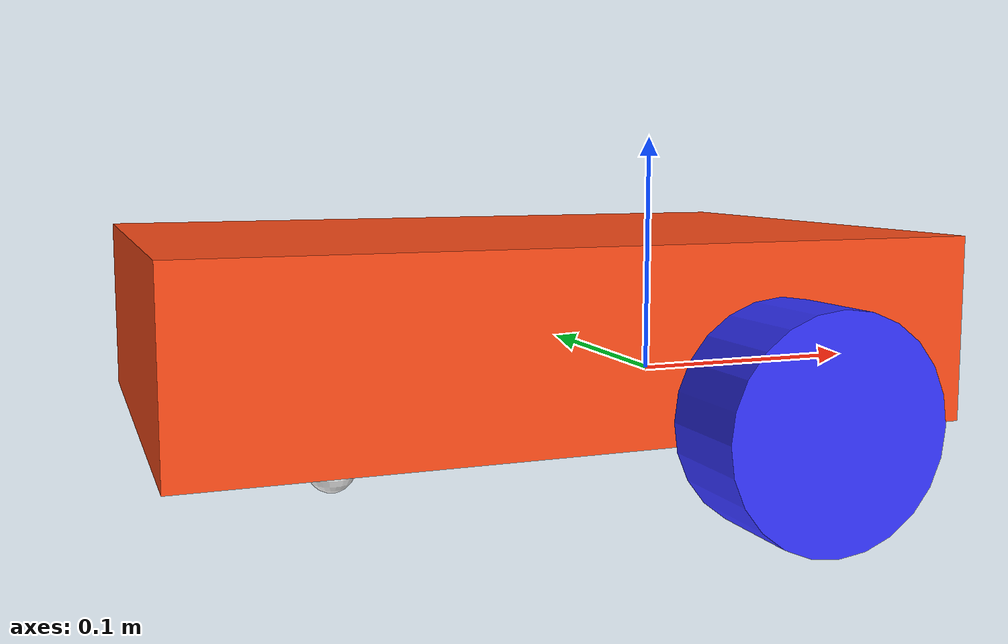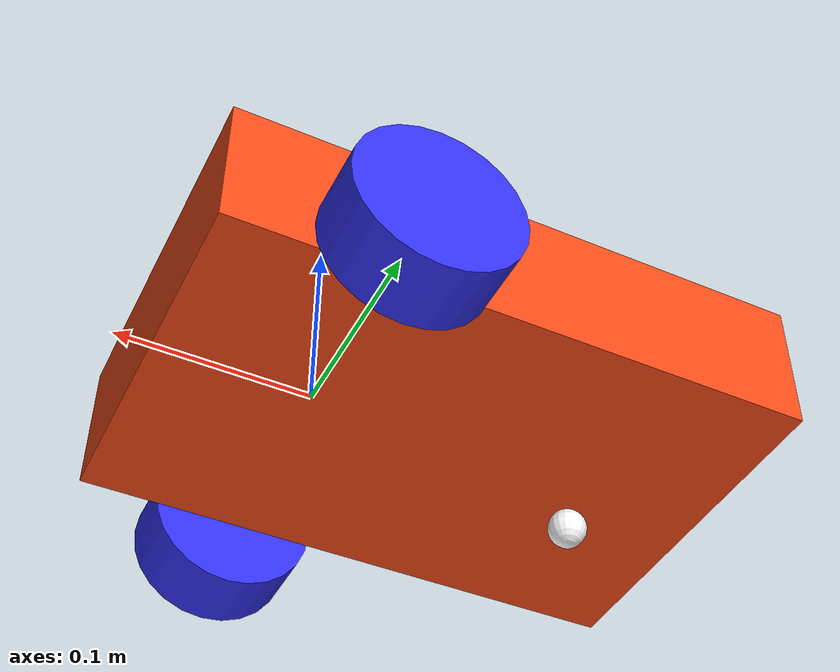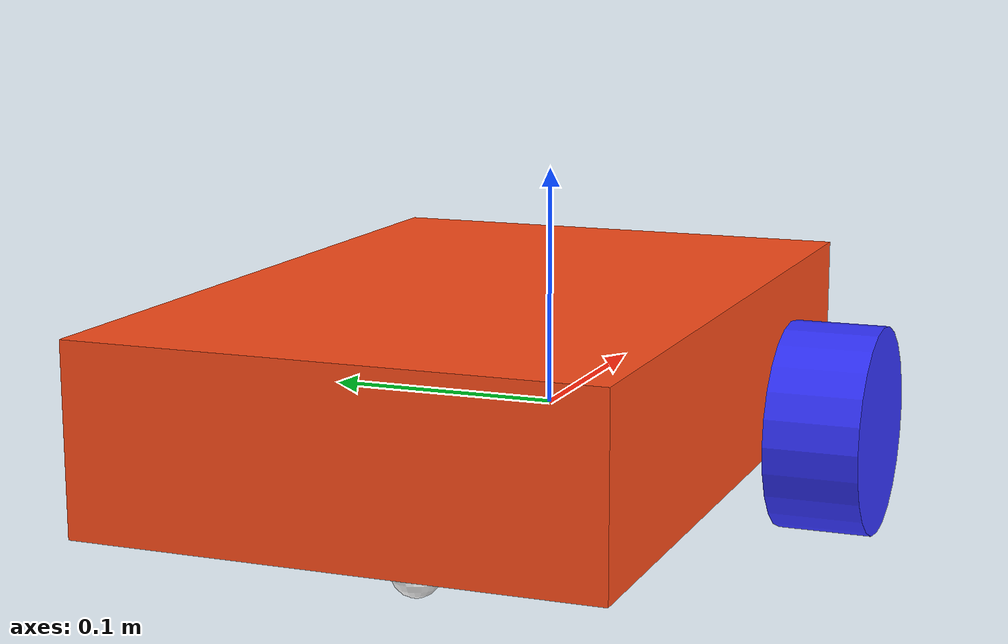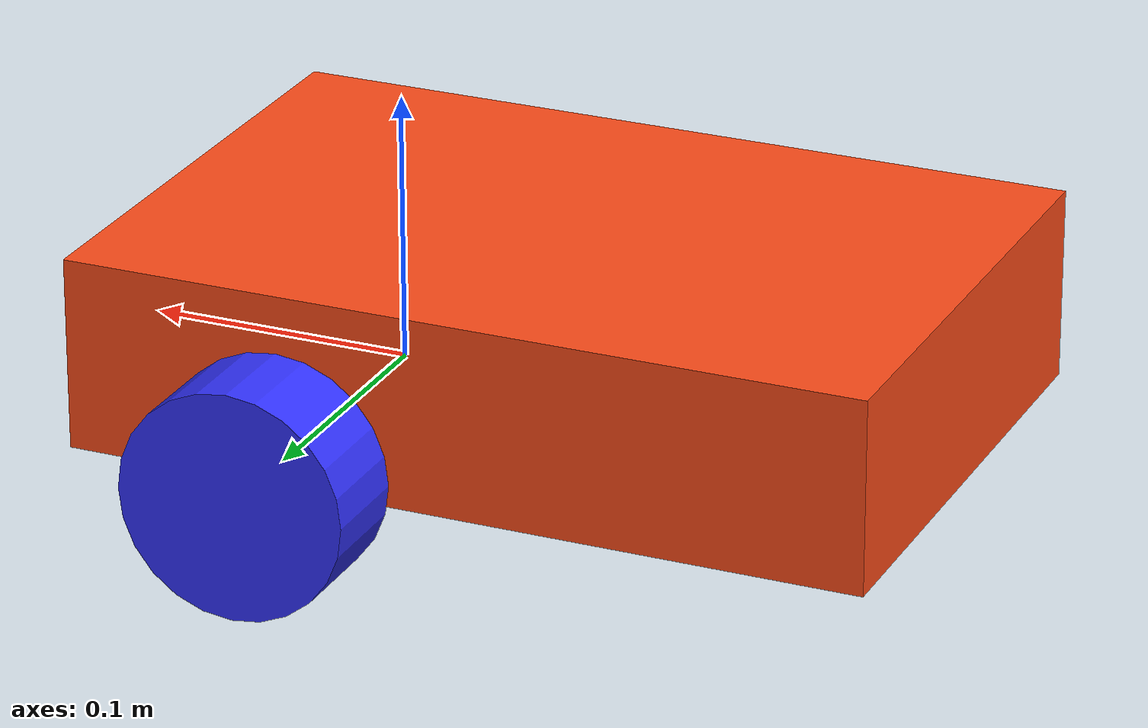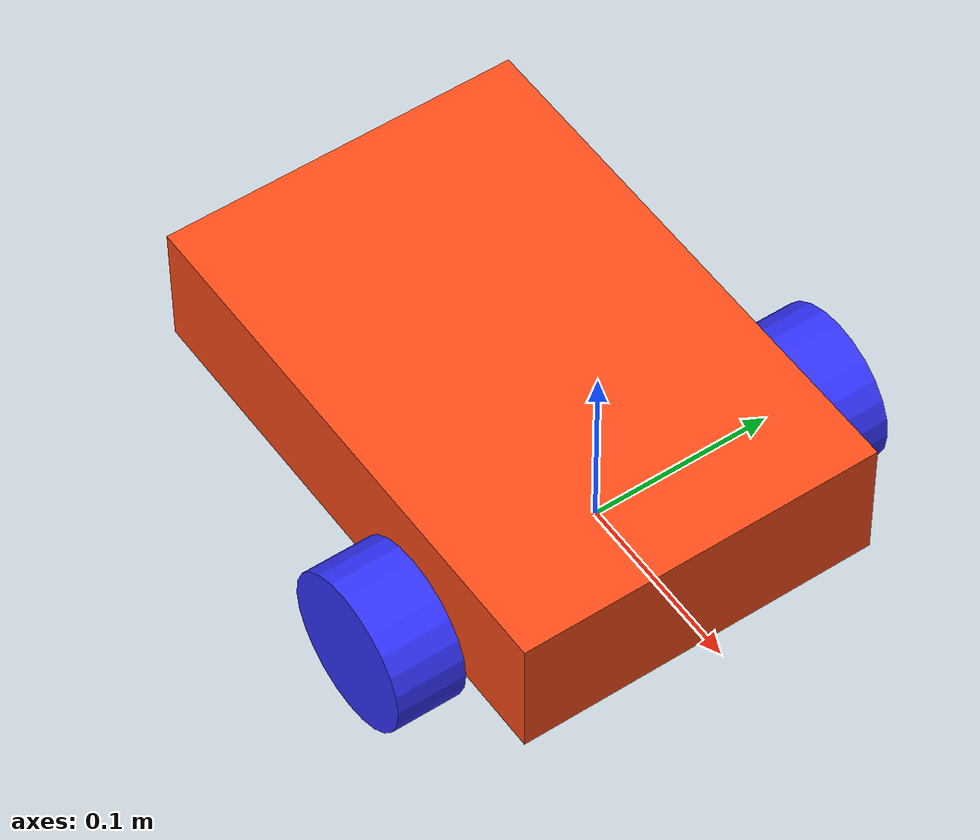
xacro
<?xml version="1.0"?>
<robot xmlns:xacro="http://www.ros.org/wiki/xacro" >

  <xacro:include filename="inertial_macros.xacro"/>

  <xacro:property name="chassis_length" value="0.300"/>
  <xacro:property name="chassis_width" value="0.200"/>
  <xacro:property name="chassis_height" value="0.072"/>
  <xacro:property name="chassis_mass" value="1.0"/>
  <xacro:property name="wheel_radius" value="0.0425"/>
  <xacro:property name="wheel_thickness" value="0.038"/>
  <xacro:property name="wheel_mass" value="0.05"/>
  <xacro:property name="wheel_offset_x" value="0.216"/>
  <xacro:property name="wheel_offset_y" value="0.123"/>
  <xacro:property name="wheel_offset_z" value="0.01"/>
  <xacro:property name="caster_wheel_radius" value="0.01"/>
  <xacro:property name="caster_wheel_mass" value="0.01"/>
  <xacro:property name="caster_wheel_offset_x" value="0.075"/>
  <xacro:property name="caster_wheel_offset_z" value="${wheel_offset_z - wheel_radius + caster_wheel_radius}"/>

  <!-- Materials -->
  <material name="white"><color rgba="1 1 1 1" /></material>
  <material name="orange"><color rgba="1 0.3 0.1 1"/></material>
  <material name="blue"><color rgba="0.2 0.2 1 1"/></material>
  <material name="black"><color rgba="0 0 0 1"/></material>
  <material name="red"><color rgba="1 0 0 1"/></material>

  <!-- BASE LINK -->
  <link name="base_link"/>

  <!-- BASE_FOOTPRINT LINK -->
  <joint name="base_footprint_joint" type="fixed">
    <parent link="base_link"/>
    <child link="base_footprint"/>
    <origin xyz="0 0 0" rpy="0 0 0"/>
  </joint>
  <link name="base_footprint"/>

  <!-- CHASSIS LINK -->
  <joint name="chassis_joint" type="fixed">
    <parent link="base_link"/>
    <child link="chassis"/>
    <origin xyz="${-wheel_offset_x} 0 ${-wheel_offset_z}"/>
  </joint>
  <link name="chassis">
    <visual>
      <origin xyz="${chassis_length/2} 0 ${chassis_height/2}"/>
      <geometry><box size="${chassis_length} ${chassis_width} ${chassis_height}"/></geometry>
      <material name="orange"/>
    </visual>
    <collision>
      <origin xyz="${chassis_length/2} 0 ${chassis_height/2}"/>
      <geometry><box size="${chassis_length} ${chassis_width} ${chassis_height}"/></geometry>
    </collision>
    <xacro:inertial_box mass="0.5" x="${chassis_length}" y="${chassis_width}" z="${chassis_height}">
      <origin xyz="${chassis_length/2} 0 ${chassis_height/2}" rpy="0 0 0"/>
    </xacro:inertial_box>
  </link>
  <gazebo reference="chassis"><material>Gazebo/Orange</material></gazebo>

  <!-- LEFT WHEEL -->
  <joint name="left_wheel_joint" type="continuous">
    <parent link="base_link"/>
    <child link="left_wheel"/>
    <origin xyz="0 ${wheel_offset_y} 0" rpy="-${pi/2} 0 0" />
    <axis xyz="0 0 1"/>
  </joint>
  <link name="left_wheel">
    <visual><geometry><cylinder radius="${wheel_radius}" length="${wheel_thickness}"/></geometry><material name="blue"/></visual>
    <collision><geometry><sphere radius="${wheel_radius}"/></geometry></collision>
    <xacro:inertial_cylinder mass="${wheel_mass}" length="${wheel_thickness}" radius="${wheel_radius}">
      <origin xyz="0 0 0" rpy="0 0 0"/>
    </xacro:inertial_cylinder>
  </link>
  <gazebo reference="left_wheel"><material>Gazebo/Blue</material></gazebo>

  <!-- RIGHT WHEEL -->
  <joint name="right_wheel_joint" type="continuous">
    <parent link="base_link"/>
    <child link="right_wheel"/>
    <origin xyz="0 ${-wheel_offset_y} 0" rpy="${pi/2} 0 0" />
    <axis xyz="0 0 1"/>
  </joint>
  <link name="right_wheel">
    <visual><geometry><cylinder radius="${wheel_radius}" length="${wheel_thickness}"/></geometry><material name="blue"/></visual>
    <collision><geometry><sphere radius="${wheel_radius}"/></geometry></collision>
    <xacro:inertial_cylinder mass="${wheel_mass}" length="${wheel_thickness}" radius="${wheel_radius}">
      <origin xyz="0 0 0" rpy="0 0 0"/>
    </xacro:inertial_cylinder>
  </link>
  <gazebo reference="right_wheel"><material>Gazebo/Blue</material></gazebo>

  <!-- CASTER WHEEL -->
  <joint name="caster_wheel_joint" type="fixed">
    <parent link="chassis"/>
    <child link="caster_wheel"/>
    <origin xyz="${caster_wheel_offset_x} 0 ${caster_wheel_offset_z}"/>
  </joint>
  <link name="caster_wheel">
    <visual><geometry><sphere radius="${caster_wheel_radius}"/></geometry><material name="white"/></visual>
    <collision><geometry><sphere radius="${caster_wheel_radius}"/></geometry></collision>
    <xacro:inertial_sphere mass="${caster_wheel_mass}" radius="${caster_wheel_radius}">
      <origin xyz="0 0 0" rpy="0 0 0"/>
    </xacro:inertial_sphere>
  </link>
  <gazebo reference="caster_wheel">
    <material>Gazebo/White</material>
    <mu1 value="0.001"/>
    <mu2 value="0.001"/>
  </gazebo>

  <!-- IMU LINK -->
  <joint name="imu_joint" type="fixed">
    <parent link="base_link"/>   <!-- attach IMU to base_link -->
    <child link="imu_link"/>
    <origin xyz="0 0 ${chassis_height/2}" rpy="0 0 ${pi}"/>
  </joint>
  <link name="imu_link">
    <visual>
      <origin xyz="0 0 0" rpy="0 0 0"/>
      <geometry><box size="0.01 0.01 0.01"/></geometry>
      <material name="red"/>
    </visual>
    <collision>
      <geometry><box size="0.01 0.01 0.01"/></geometry>
    </collision>
    <inertial>
      <mass value="0.001"/>
      <inertia ixx="1e-6" iyy="1e-6" izz="1e-6" ixy="0" ixz="0" iyz="0"/>
    </inertial>
  </link>

</robot>
